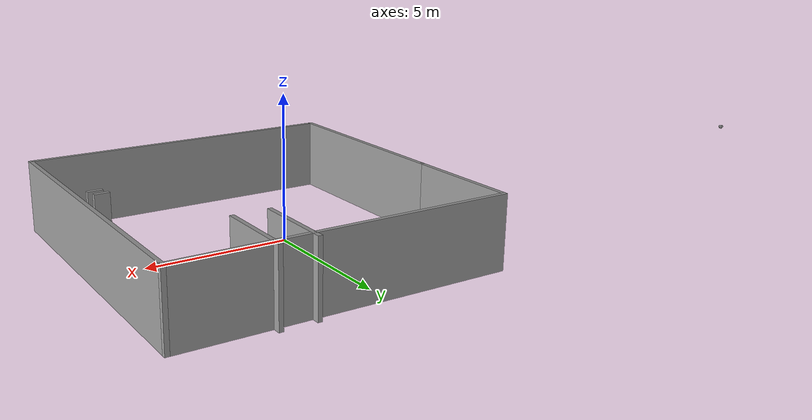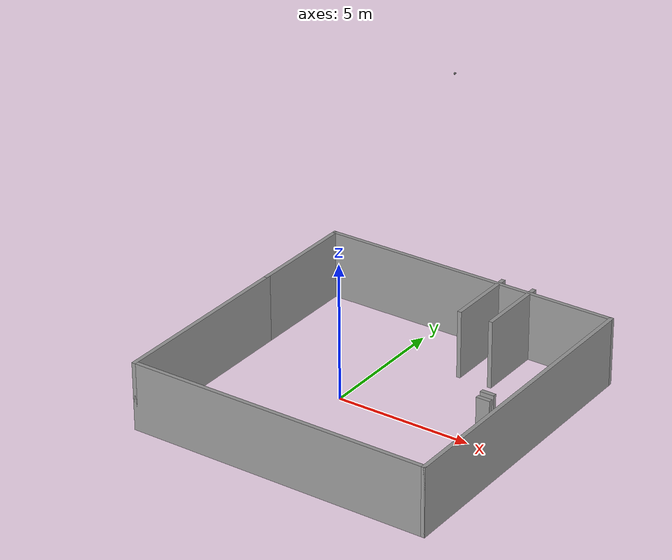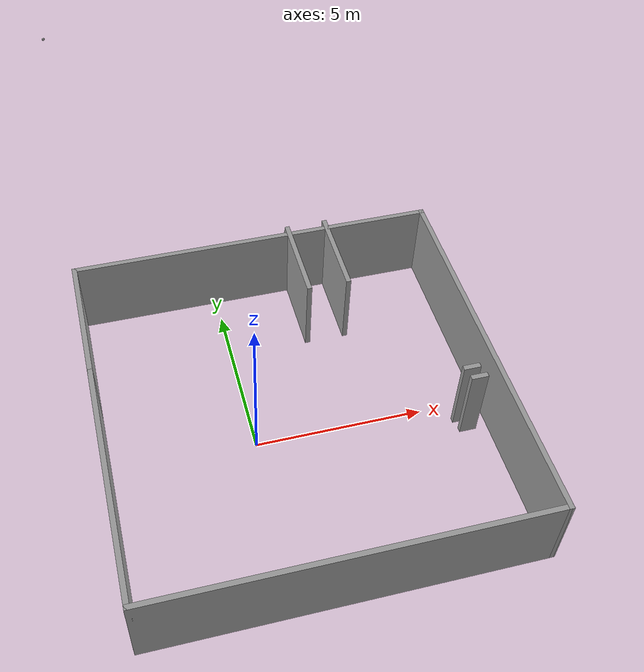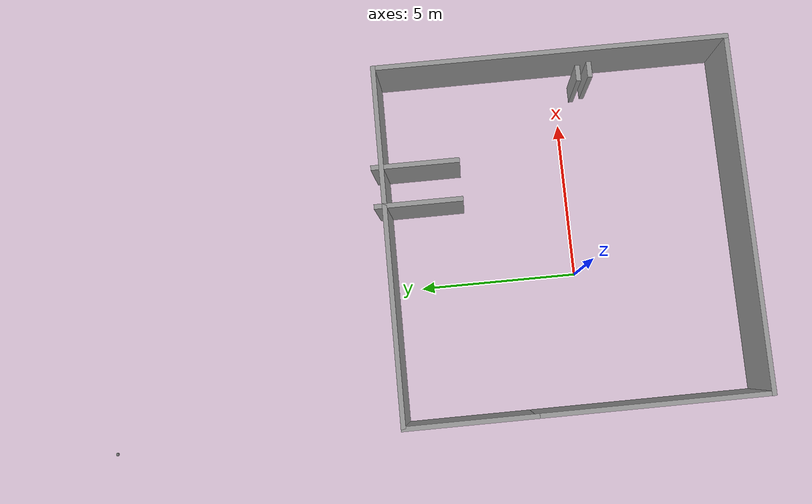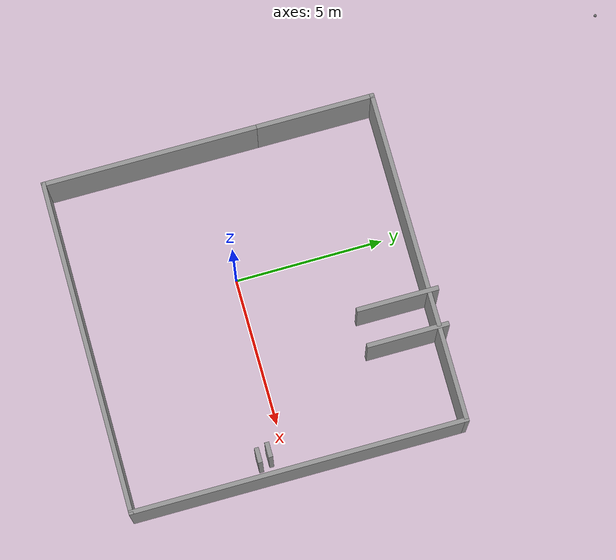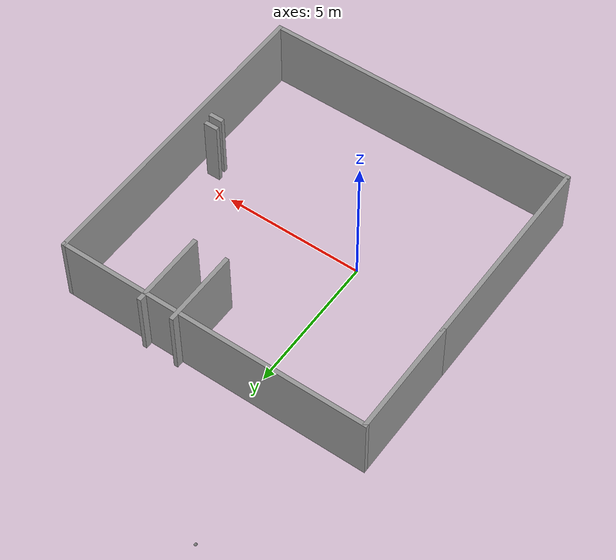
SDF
<sdf version="1.9">
 <world name="custom_world">
  <physics type="ode">
   <max_step_size>0.004</max_step_size>
   <real_time_factor>1.0</real_time_factor>
   <real_time_update_rate>250</real_time_update_rate>
  </physics>
  <plugin name="gz::sim::systems::Physics" filename="gz-sim-physics-system"/>
  <plugin name="gz::sim::systems::UserCommands" filename="gz-sim-user-commands-system"/>
  <plugin name="gz::sim::systems::SceneBroadcaster" filename="gz-sim-scene-broadcaster-system"/>
  <plugin name="gz::sim::systems::Contact" filename="gz-sim-contact-system"/>
  <plugin name="gz::sim::systems::Imu" filename="gz-sim-imu-system"/>
  <plugin name="gz::sim::systems::AirPressure" filename="gz-sim-air-pressure-system"/>
  <plugin name="gz::sim::systems::ApplyLinkWrench" filename="gz-sim-apply-link-wrench-system"/>
  <plugin name="gz::sim::systems::NavSat" filename="gz-sim-navsat-system"/>
  <plugin name="gz::sim::systems::Sensors" filename="gz-sim-sensors-system">
   <render_engine>ogre2</render_engine>
  </plugin>
  <gravity>0 0 -9.8</gravity>
  <magnetic_field>6e-06 2.3e-05 -4.2e-05</magnetic_field>
  <atmosphere type="adiabatic"/>
  <scene>
   <grid>false</grid>
   <ambient>0.4 0.4 0.4 1</ambient>
   <background>0.7 0.7 0.7 1</background>
   <shadows>true</shadows>
  </scene>
  <model name="custom_terrain"><include><uri>model://custom_model</uri></include></model>
  <light name="sunUTC" type="directional">
   <pose>0 0 500 0 -0 0</pose>
   <intensity>1</intensity>
   <direction>0.001 0.625 -0.78</direction>
   <diffuse>0.904 0.904 0.904 1</diffuse>
   <specular>0.271 0.271 0.271 1</specular>
   <attenuation><range>2000</range><linear>0</linear><constant>1</constant><quadratic>0</quadratic></attenuation>
   <spot><inner_angle>0</inner_angle><outer_angle>0</outer_angle><falloff>0</falloff></spot>
  </light>
  <spherical_coordinates>
   <surface_model>EARTH_WGS84</surface_model>
   <world_frame_orientation>ENU</world_frame_orientation>
   <latitude_deg>47.397971057728974</latitude_deg>
   <longitude_deg>8.546163739800146</longitude_deg>
   <elevation>0</elevation>
  </spherical_coordinates>
  <include><uri>model://rock1</uri><pose>-4 13 6 0 0 0</pose></include>
 </world>
</sdf>

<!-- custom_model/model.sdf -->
<sdf version='1.7'>
  <model name='custom_world'>
    <pose>1.2678 0.28081 0 0 -0 0</pose>
    <link name='Wall_0'>
      <collision name='Wall_0_Collision'>
        <geometry>
          <box>
            <size>7.25 0.15 2.5</size>
          </box>
        </geometry>
        <pose>0 0 1.25 0 -0 0</pose>
      </collision>
      <visual name='Wall_0_Visual'>
        <pose>0 0 1.25 0 -0 0</pose>
        <geometry>
          <box>
            <size>7.25 0.15 2.5</size>
          </box>
        </geometry>
        <material>
          <script>
            <uri>file://media/materials/scripts/gazebo.material</uri>
            <name>Gazebo/Grey</name>
          </script>
          <ambient>1 1 1 1</ambient>
        </material>
        <meta>
          <layer>0</layer>
        </meta>
      </visual>
      <pose>-5.55 -2 0 0 -0 -1.5708</pose>
    </link>
    <link name='Wall_1'>
      <collision name='Wall_1_Collision'>
        <geometry>
          <box>
            <size>11.25 0.15 2.5</size>
          </box>
        </geometry>
        <pose>0 0 1.25 0 -0 0</pose>
      </collision>
      <visual name='Wall_1_Visual'>
        <pose>0 0 1.25 0 -0 0</pose>
        <geometry>
          <box>
            <size>11.25 0.15 2.5</size>
          </box>
        </geometry>
        <material>
          <script>
            <uri>file://media/materials/scripts/gazebo.material</uri>
            <name>Gazebo/Grey</name>
          </script>
          <ambient>1 1 1 1</ambient>
        </material>
        <meta>
          <layer>0</layer>
        </meta>
      </visual>
      <pose>-0 -5.55 0 0 -0 0</pose>
    </link>
    <link name='Wall_2'>
      <collision name='Wall_2_Collision'>
        <geometry>
          <box>
            <size>11.25 0.15 2.5</size>
          </box>
        </geometry>
        <pose>0 0 1.25 0 -0 0</pose>
      </collision>
      <visual name='Wall_2_Visual'>
        <pose>0 0 1.25 0 -0 0</pose>
        <geometry>
          <box>
            <size>11.25 0.15 2.5</size>
          </box>
        </geometry>
        <material>
          <script>
            <uri>file://media/materials/scripts/gazebo.material</uri>
            <name>Gazebo/Grey</name>
          </script>
          <ambient>1 1 1 1</ambient>
        </material>
        <meta>
          <layer>0</layer>
        </meta>
      </visual>
      <pose>5.55 0 0 0 -0 1.5708</pose>
    </link>
    <link name='Wall_3'>
      <collision name='Wall_3_Collision'>
        <geometry>
          <box>
            <size>11.25 0.15 2.5</size>
          </box>
        </geometry>
        <pose>0 0 1.25 0 -0 0</pose>
      </collision>
      <visual name='Wall_3_Visual'>
        <pose>0 0 1.25 0 -0 0</pose>
        <geometry>
          <box>
            <size>11.25 0.15 2.5</size>
          </box>
        </geometry>
        <material>
          <script>
            <uri>file://media/materials/scripts/gazebo.material</uri>
            <name>Gazebo/Grey</name>
          </script>
          <ambient>1 1 1 1</ambient>
        </material>
        <meta>
          <layer>0</layer>
        </meta>
      </visual>
      <pose>-0 5.55 0 0 -0 3.14159</pose>
    </link>
    <link name='Wall_4'>
      <collision name='Wall_4_Collision'>
        <geometry>
          <box>
            <size>4.15 0.15 2.5</size>
          </box>
        </geometry>
        <pose>0 0 1.25 0 -0 0</pose>
      </collision>
      <visual name='Wall_4_Visual'>
        <pose>0 0 1.25 0 -0 0</pose>
        <geometry>
          <box>
            <size>4.15 0.15 2.5</size>
          </box>
        </geometry>
        <material>
          <script>
            <uri>file://media/materials/scripts/gazebo.material</uri>
            <name>Gazebo/Grey</name>
          </script>
          <ambient>1 1 1 1</ambient>
        </material>
        <meta>
          <layer>0</layer>
        </meta>
      </visual>
      <pose>-5.55 3.55 0 0 -0 -1.5708</pose>
    </link>
    <link name='Wall_7'>
      <collision name='Wall_7_Collision'>
        <geometry>
          <box>
            <size>0.5 0.15 2.5</size>
          </box>
        </geometry>
        <pose>0 0 1.25 0 -0 0</pose>
      </collision>
      <visual name='Wall_7_Visual'>
        <pose>0 0 1.25 0 -0 0</pose>
        <geometry>
          <box>
            <size>0.5 0.15 2.5</size>
          </box>
        </geometry>
        <material>
          <script>
            <uri>file://media/materials/scripts/gazebo.material</uri>
            <name>Gazebo/Grey</name>
          </script>
          <ambient>1 1 1 1</ambient>
        </material>
        <meta>
          <layer>0</layer>
        </meta>
      </visual>
      <pose>4.87224 -1.16774 0 0 -0 3.14159</pose>
    </link>
    <link name='Wall_9'>
      <collision name='Wall_9_Collision'>
        <geometry>
          <box>
            <size>0.5 0.15 2.5</size>
          </box>
        </geometry>
        <pose>0 0 1.25 0 -0 0</pose>
      </collision>
      <visual name='Wall_9_Visual'>
        <pose>0 0 1.25 0 -0 0</pose>
        <geometry>
          <box>
            <size>0.5 0.15 2.5</size>
          </box>
        </geometry>
        <material>
          <script>
            <uri>file://media/materials/scripts/gazebo.material</uri>
            <name>Gazebo/Grey</name>
          </script>
          <ambient>1 1 1 1</ambient>
        </material>
        <meta>
          <layer>0</layer>
        </meta>
      </visual>
      <pose>4.79133 -0.803639 0 0 -0 3.14159</pose>
    </link>
    <link name='Wall_13'>
      <collision name='Wall_13_Collision'>
        <geometry>
          <box>
            <size>2.75 0.15 2.5</size>
          </box>
        </geometry>
        <pose>0 0 1.25 0 -0 0</pose>
      </collision>
      <visual name='Wall_13_Visual'>
        <pose>0 0 1.25 0 -0 0</pose>
        <geometry>
          <box>
            <size>2.75 0.15 2.5</size>
          </box>
        </geometry>
        <material>
          <script>
            <uri>file://media/materials/scripts/gazebo.material</uri>
            <name>Gazebo/Grey</name>
          </script>
          <ambient>1 1 1 1</ambient>
        </material>
        <meta>
          <layer>0</layer>
        </meta>
      </visual>
      <pose>2.4 4.5 0 0 -0 -1.5708</pose>
    </link>
    <link name='Wall_18'>
      <collision name='Wall_18_Collision'>
        <geometry>
          <box>
            <size>2.75 0.15 2.5</size>
          </box>
        </geometry>
        <pose>0 0 1.25 0 -0 0</pose>
      </collision>
      <visual name='Wall_18_Visual'>
        <pose>0 0 1.25 0 -0 0</pose>
        <geometry>
          <box>
            <size>2.75 0.15 2.5</size>
          </box>
        </geometry>
        <material>
          <script>
            <uri>file://media/materials/scripts/gazebo.material</uri>
            <name>Gazebo/Grey</name>
          </script>
          <ambient>1 1 1 1</ambient>
        </material>
        <meta>
          <layer>0</layer>
        </meta>
      </visual>
      <pose>1.18575 4.5 0 0 -0 -1.5708</pose>
    </link>
    <static>1</static>
  </model>
</sdf>

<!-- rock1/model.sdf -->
<sdf version="1.6">
  <model name="rock1"> <pose>0 0 0 0 0 0</pose> <link name="link">
      <inertial>
        <mass>0.001</mass>
        <inertia ixx="0.000833" ixy="0" ixz="0" iyy="0.000833" iyz="0" izz="0.000833"/>
      </inertial>

      <collision name="collision">
        <geometry>
          <mesh>
            <uri>model://rock1/meshes/rock1.stl</uri>
            <scale>0.001 0.001 0.001</scale>
          </mesh>
        </geometry>
      </collision>

      <visual name="visual">
        <geometry>
          <mesh>
            <uri>model://rock1/meshes/rock1.stl</uri>
            <scale>0.001 0.001 0.001</scale>
          </mesh>
        </geometry>
        <material>
          <ambient>0.3 0.3 0.3 1</ambient>
          <diffuse>0.5 0.5 0.5 1</diffuse>
          <specular>0.01 0.01 0.01 1</specular>
          <emissive>0 0 0 0</emissive>
        </material>
      </visual>

    </link>
  </model>
</sdf>
